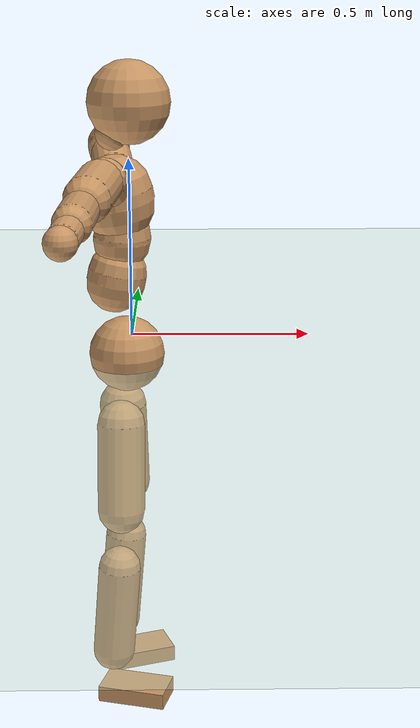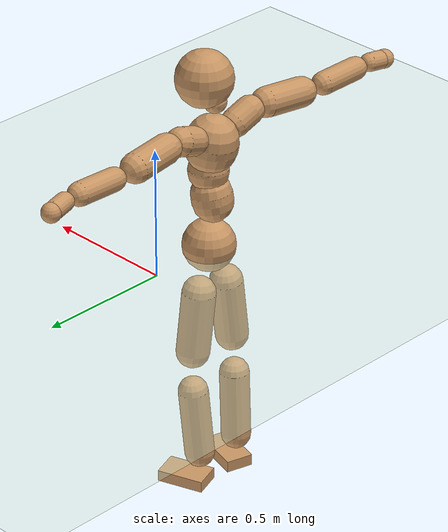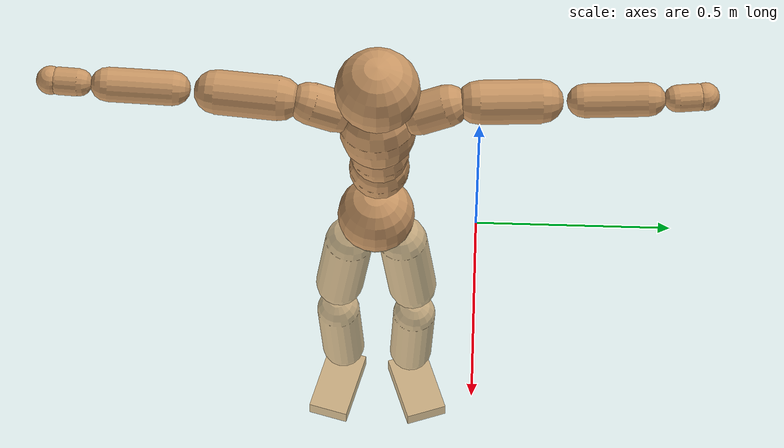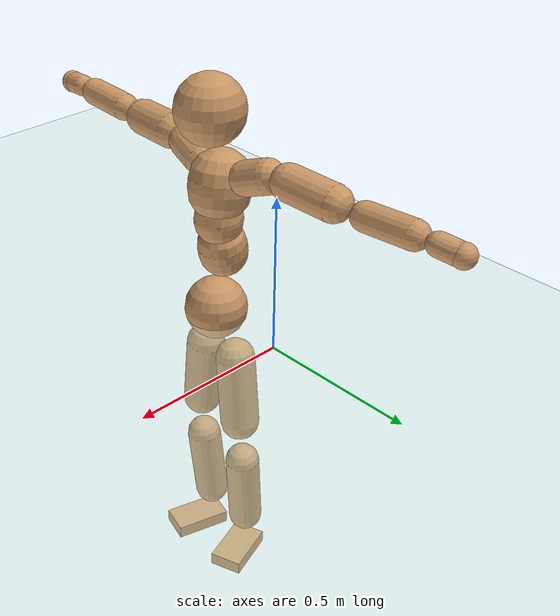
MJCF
<mujoco model="humanoid">
  <compiler coordinate="local"/>
  <default>
    <joint damping="0.0" armature="0.01" stiffness="0.0" limited="true"/>
    <geom conaffinity="1" condim="3" contype="7" margin="0.001" rgba="0.8 0.6 .4 1"/>
  </default>
  <asset>
    <texture type="skybox" builtin="gradient" rgb1=".4 .5 .6" rgb2="0 0 0" width="100" height="100"/>
    <texture builtin="flat" height="1278" mark="cross" markrgb="1 1 1" name="texgeom" random="0.01" rgb1="0.8 0.6 0.4" rgb2="0.8 0.6 0.4" type="cube" width="127"/>
    <texture builtin="checker" height="100" name="texplane" rgb1="0 0 0" rgb2="0.8 0.8 0.8" type="2d" width="100"/>
    <material name="MatPlane" reflectance="0.5" shininess="1" specular="1" texrepeat="60 60" texture="texplane"/>
    <material name="geom" texture="texgeom" texuniform="true"/>
  </asset>
  <worldbody>
    <light cutoff="100" diffuse="1 1 1" dir="-0 0 -1.3" directional="true" exponent="1" pos="0 0 1.3" specular=".1 .1 .1"/>
    <geom conaffinity="1" condim="3" name="floor" pos="0 0 0" rgba="0.8 0.9 0.8 1" size="100 100 .2" type="plane" material="MatPlane"/>
    <body name="Pelvis" pos="-0.0024 -0.2579 0.0262">
      <freejoint name="Pelvis"/>
      <geom type="sphere" contype="1" conaffinity="1" density="500" size="0.0999" pos="0.0000 0.0000 0.0000" name="Pelvis"/>
      <body name="L_Hip" pos="-0.0191 0.06 -0.0862">
        <joint name="L_Hip_x" type="hinge" pos="0 0 0" axis="1 0 0" stiffness="800" damping="80" armature="0.02" range="-180.0000 180.0000"/>
        <joint name="L_Hip_y" type="hinge" pos="0 0 0" axis="0 1 0" stiffness="800" damping="80" armature="0.02" range="-180.0000 180.0000"/>
        <joint name="L_Hip_z" type="hinge" pos="0 0 0" axis="0 0 1" stiffness="800" damping="80" armature="0.02" range="-180.0000 180.0000"/>
        <geom type="capsule" contype="1" conaffinity="1" density="500" fromto="0.0017 0.0090 -0.0798 0.0068 0.0359 -0.3190" size="0.0635" name="L_Hip"/>
        <body name="L_Knee" pos="0.0086 0.0448 -0.3988">
          <joint name="L_Knee_x" type="hinge" pos="0 0 0" axis="1 0 0" stiffness="800" damping="80" armature="0.02" range="-180.0000 180.0000"/>
          <joint name="L_Knee_y" type="hinge" pos="0 0 0" axis="0 1 0" stiffness="800" damping="80" armature="0.02" range="-180.0000 180.0000"/>
          <joint name="L_Knee_z" type="hinge" pos="0 0 0" axis="0 0 1" stiffness="800" damping="80" armature="0.02" range="-180.0000 180.0000"/>
          <geom type="capsule" contype="1" conaffinity="1" density="500" fromto="-0.0078 -0.0030 -0.0879 -0.0311 -0.0121 -0.3515" size="0.0567" name="L_Knee"/>
          <body name="L_Ankle" pos="-0.0389 -0.0151 -0.4394">
            <joint name="L_Ankle_x" type="hinge" pos="0 0 0" axis="1 0 0" stiffness="800" damping="80" armature="0.02" range="-180.0000 180.0000"/>
            <joint name="L_Ankle_y" type="hinge" pos="0 0 0" axis="0 1 0" stiffness="800" damping="80" armature="0.02" range="-180.0000 180.0000"/>
            <joint name="L_Ankle_z" type="hinge" pos="0 0 0" axis="0 0 1" stiffness="800" damping="80" armature="0.02" range="-180.0000 180.0000"/>
            <geom type="box" contype="1" conaffinity="1" density="500" pos="0.0625 0.0217 -0.0313" size="0.0905 0.054 0.0222" quat="0.9860 0.0000 0.0000 0.1665" name="L_Ankle"/>
            <body name="L_Toe" pos="0.1251 0.0435 -0.0626">
              <joint name="L_Toe_x" type="hinge" pos="0 0 0" axis="1 0 0" stiffness="500" damping="50" armature="0.02" range="-180.0000 180.0000"/>
              <joint name="L_Toe_y" type="hinge" pos="0 0 0" axis="0 1 0" stiffness="500" damping="50" armature="0.02" range="-180.0000 180.0000"/>
              <joint name="L_Toe_z" type="hinge" pos="0 0 0" axis="0 0 1" stiffness="500" damping="50" armature="0.02" range="-180.0000 180.0000"/>
              <geom type="box" contype="1" conaffinity="1" density="500" pos="0.0000 0.0000 0.0313" size="0.0011 0.0026 0.0011" quat="0.9853 0.0000 0.0000 0.1710" name="L_Toe"/>
            </body>
          </body>
        </body>
      </body>
      <body name="R_Hip" pos="-0.0152 -0.0616 -0.0945">
        <joint name="R_Hip_x" type="hinge" pos="0 0 0" axis="1 0 0" stiffness="800" damping="80" armature="0.02" range="-180.0000 180.0000"/>
        <joint name="R_Hip_y" type="hinge" pos="0 0 0" axis="0 1 0" stiffness="800" damping="80" armature="0.02" range="-180.0000 180.0000"/>
        <joint name="R_Hip_z" type="hinge" pos="0 0 0" axis="0 0 1" stiffness="800" damping="80" armature="0.02" range="-180.0000 180.0000"/>
        <geom type="capsule" contype="1" conaffinity="1" density="500" fromto="-0.0009 -0.0091 -0.0793 -0.0038 -0.0363 -0.3171" size="0.063" name="R_Hip"/>
        <body name="R_Knee" pos="-0.0047 -0.0454 -0.3964">
          <joint name="R_Knee_x" type="hinge" pos="0 0 0" axis="1 0 0" stiffness="800" damping="80" armature="0.02" range="-180.0000 180.0000"/>
          <joint name="R_Knee_y" type="hinge" pos="0 0 0" axis="0 1 0" stiffness="800" damping="80" armature="0.02" range="-180.0000 180.0000"/>
          <joint name="R_Knee_z" type="hinge" pos="0 0 0" axis="0 0 1" stiffness="800" damping="80" armature="0.02" range="-180.0000 180.0000"/>
          <geom type="capsule" contype="1" conaffinity="1" density="500" fromto="-0.0072 0.0039 -0.0866 -0.0289 0.0157 -0.3466" size="0.0568" name="R_Knee"/>
          <body name="R_Ankle" pos="-0.0361 0.0197 -0.4332">
            <joint name="R_Ankle_x" type="hinge" pos="0 0 0" axis="1 0 0" stiffness="800" damping="80" armature="0.02" range="-180.0000 180.0000"/>
            <joint name="R_Ankle_y" type="hinge" pos="0 0 0" axis="0 1 0" stiffness="800" damping="80" armature="0.02" range="-180.0000 180.0000"/>
            <joint name="R_Ankle_z" type="hinge" pos="0 0 0" axis="0 0 1" stiffness="800" damping="80" armature="0.02" range="-180.0000 180.0000"/>
            <geom type="box" contype="1" conaffinity="1" density="500" pos="0.0670 -0.0183 -0.0320" size="0.0933 0.0526 0.0225" quat="0.9912 0.0000 0.0000 -0.1326" name="R_Ankle"/>
            <body name="R_Toe" pos="0.1341 -0.0365 -0.064">
              <joint name="R_Toe_x" type="hinge" pos="0 0 0" axis="1 0 0" stiffness="500" damping="50" armature="0.02" range="-180.0000 180.0000"/>
              <joint name="R_Toe_y" type="hinge" pos="0 0 0" axis="0 1 0" stiffness="500" damping="50" armature="0.02" range="-180.0000 180.0000"/>
              <joint name="R_Toe_z" type="hinge" pos="0 0 0" axis="0 0 1" stiffness="500" damping="50" armature="0.02" range="-180.0000 180.0000"/>
              <geom type="box" contype="1" conaffinity="1" density="500" pos="0.0000 0.0000 0.0325" size="0.0011 0.0026 0.0012" quat="0.9923 0.0000 0.0000 -0.1240" name="R_Toe"/>
            </body>
          </body>
        </body>
      </body>
      <body name="Torso" pos="-0.0383 0.0045 0.1306">
        <joint name="Torso_x" type="hinge" pos="0 0 0" axis="1 0 0" stiffness="1000" damping="100" armature="0.02" range="-180.0000 180.0000"/>
        <joint name="Torso_y" type="hinge" pos="0 0 0" axis="0 1 0" stiffness="1000" damping="100" armature="0.02" range="-180.0000 180.0000"/>
        <joint name="Torso_z" type="hinge" pos="0 0 0" axis="0 0 1" stiffness="1000" damping="100" armature="0.02" range="-180.0000 180.0000"/>
        <geom type="capsule" contype="1" conaffinity="1" density="500" fromto="0.0180 0.0031 0.0894 0.0120 0.0021 0.0596" size="0.076632" name="Torso"/>
        <body name="Spine" pos="0.0301 0.0052 0.1489">
          <joint name="Spine_x" type="hinge" pos="0 0 0" axis="1 0 0" stiffness="1000" damping="100" armature="0.02" range="-180.0000 180.0000"/>
          <joint name="Spine_y" type="hinge" pos="0 0 0" axis="0 1 0" stiffness="1000" damping="100" armature="0.02" range="-180.0000 180.0000"/>
          <joint name="Spine_z" type="hinge" pos="0 0 0" axis="0 0 1" stiffness="1000" damping="100" armature="0.02" range="-180.0000 180.0000"/>
          <geom type="capsule" contype="1" conaffinity="1" density="500" fromto="0.0018 -0.0015 0.0364 0.0012 -0.0010 0.0243" size="0.07533" name="Spine"/>
          <body name="Chest" pos="0.0029 -0.0025 0.0607">
            <joint name="Chest_x" type="hinge" pos="0 0 0" axis="1 0 0" stiffness="1000" damping="100" armature="0.02" range="-180.0000 180.0000"/>
            <joint name="Chest_y" type="hinge" pos="0 0 0" axis="0 1 0" stiffness="1000" damping="100" armature="0.02" range="-180.0000 180.0000"/>
            <joint name="Chest_z" type="hinge" pos="0 0 0" axis="0 0 1" stiffness="1000" damping="100" armature="0.02" range="-180.0000 180.0000"/>
            <geom type="capsule" contype="1" conaffinity="1" density="500" fromto="-0.0157 -0.0050 0.0915 -0.0105 -0.0033 0.0610" size="0.096441" name="Chest"/>
            <body name="Neck" pos="-0.0331 -0.0133 0.2224">
              <joint name="Neck_x" type="hinge" pos="0 0 0" axis="1 0 0" stiffness="500" damping="50" armature="0.02" range="-180.0000 180.0000"/>
              <joint name="Neck_y" type="hinge" pos="0 0 0" axis="0 1 0" stiffness="500" damping="50" armature="0.02" range="-180.0000 180.0000"/>
              <joint name="Neck_z" type="hinge" pos="0 0 0" axis="0 0 1" stiffness="500" damping="50" armature="0.02" range="-180.0000 180.0000"/>
              <geom type="capsule" contype="1" conaffinity="1" density="500" fromto="0.0110 0.0020 0.0191 0.0440 0.0080 0.0766" size="0.042966" name="Neck"/>
              <body name="Head" pos="0.055 0.01 0.0957">
                <joint name="Head_x" type="hinge" pos="0 0 0" axis="1 0 0" stiffness="500" damping="50" armature="0.02" range="-180.0000 180.0000"/>
                <joint name="Head_y" type="hinge" pos="0 0 0" axis="0 1 0" stiffness="500" damping="50" armature="0.02" range="-180.0000 180.0000"/>
                <joint name="Head_z" type="hinge" pos="0 0 0" axis="0 0 1" stiffness="500" damping="50" armature="0.02" range="-180.0000 180.0000"/>
                <geom type="sphere" contype="1" conaffinity="1" density="500" size="0.1068" pos="0.0000 0.0000 0.0000" name="Head"/>
              </body>
            </body>
            <body name="L_Thorax" pos="-0.0203 0.072 0.1184">
              <joint name="L_Thorax_x" type="hinge" pos="0 0 0" axis="1 0 0" stiffness="500" damping="50" armature="0.02" range="-180.0000 180.0000"/>
              <joint name="L_Thorax_y" type="hinge" pos="0 0 0" axis="0 1 0" stiffness="500" damping="50" armature="0.02" range="-180.0000 180.0000"/>
              <joint name="L_Thorax_z" type="hinge" pos="0 0 0" axis="0 0 1" stiffness="500" damping="50" armature="0.02" range="-180.0000 180.0000"/>
              <geom type="capsule" contype="1" conaffinity="1" density="500" fromto="-0.0038 0.0244 0.0092 -0.0151 0.0977 0.0367" size="0.0537" name="L_Thorax"/>
              <body name="L_Shoulder" pos="-0.0189 0.1221 0.0458">
                <joint name="L_Shoulder_x" type="hinge" pos="0 0 0" axis="1 0 0" stiffness="500" damping="50" armature="0.02" range="-720.0000 720.0000"/>
                <joint name="L_Shoulder_y" type="hinge" pos="0 0 0" axis="0 1 0" stiffness="500" damping="50" armature="0.02" range="-720.0000 720.0000"/>
                <joint name="L_Shoulder_z" type="hinge" pos="0 0 0" axis="0 0 1" stiffness="500" damping="50" armature="0.02" range="-720.0000 720.0000"/>
                <geom type="capsule" contype="1" conaffinity="1" density="500" fromto="-0.0045 0.0523 -0.0033 -0.0181 0.2092 -0.0133" size="0.0559" name="L_Shoulder"/>
                <body name="L_Elbow" pos="-0.0226 0.2615 -0.0166">
                  <joint name="L_Elbow_x" type="hinge" pos="0 0 0" axis="1 0 0" stiffness="500" damping="50" armature="0.02" range="-720.0000 720.0000"/>
                  <joint name="L_Elbow_y" type="hinge" pos="0 0 0" axis="0 1 0" stiffness="500" damping="50" armature="0.02" range="-720.0000 720.0000"/>
                  <joint name="L_Elbow_z" type="hinge" pos="0 0 0" axis="0 0 1" stiffness="500" damping="50" armature="0.02" range="-720.0000 720.0000"/>
                  <geom type="capsule" contype="1" conaffinity="1" density="500" fromto="-0.0015 0.0538 0.0026 -0.0061 0.2153 0.0104" size="0.0432" name="L_Elbow"/>
                  <body name="L_Wrist" pos="-0.0076 0.2691 0.013">
                    <joint name="L_Wrist_x" type="hinge" pos="0 0 0" axis="1 0 0" stiffness="300" damping="30" armature="0.02" range="-180.0000 180.0000"/>
                    <joint name="L_Wrist_y" type="hinge" pos="0 0 0" axis="0 1 0" stiffness="300" damping="30" armature="0.02" range="-180.0000 180.0000"/>
                    <joint name="L_Wrist_z" type="hinge" pos="0 0 0" axis="0 0 1" stiffness="300" damping="30" armature="0.02" range="-180.0000 180.0000"/>
                    <geom type="capsule" contype="1" conaffinity="1" density="500" fromto="-0.0031 0.0175 -0.0022 -0.0126 0.0700 -0.0086" size="0.0346" name="L_Wrist"/>
                    <body name="L_Hand" pos="-0.0157 0.0875 -0.0108">
                      <joint name="L_Hand_x" type="hinge" pos="0 0 0" axis="1 0 0" stiffness="300" damping="30" armature="0.02" range="-180.0000 180.0000"/>
                      <joint name="L_Hand_y" type="hinge" pos="0 0 0" axis="0 1 0" stiffness="300" damping="30" armature="0.02" range="-180.0000 180.0000"/>
                      <joint name="L_Hand_z" type="hinge" pos="0 0 0" axis="0 0 1" stiffness="300" damping="30" armature="0.02" range="-180.0000 180.0000"/>
                      <geom type="sphere" contype="1" conaffinity="1" density="500" size="0.0360" pos="0.0000 0.0000 0.0000" name="L_Hand"/>
                    </body>
                  </body>
                </body>
              </body>
            </body>
            <body name="R_Thorax" pos="-0.0251 -0.0834 0.1166">
              <joint name="R_Thorax_x" type="hinge" pos="0 0 0" axis="1 0 0" stiffness="500" damping="50" armature="0.02" range="-180.0000 180.0000"/>
              <joint name="R_Thorax_y" type="hinge" pos="0 0 0" axis="0 1 0" stiffness="500" damping="50" armature="0.02" range="-180.0000 180.0000"/>
              <joint name="R_Thorax_z" type="hinge" pos="0 0 0" axis="0 0 1" stiffness="500" damping="50" armature="0.02" range="-180.0000 180.0000"/>
              <geom type="capsule" contype="1" conaffinity="1" density="500" fromto="-0.0016 -0.0226 0.0094 -0.0064 -0.0906 0.0377" size="0.0539" name="R_Thorax"/>
              <body name="R_Shoulder" pos="-0.008 -0.1132 0.0471">
                <joint name="R_Shoulder_x" type="hinge" pos="0 0 0" axis="1 0 0" stiffness="500" damping="50" armature="0.02" range="-720.0000 720.0000"/>
                <joint name="R_Shoulder_y" type="hinge" pos="0 0 0" axis="0 1 0" stiffness="500" damping="50" armature="0.02" range="-720.0000 720.0000"/>
                <joint name="R_Shoulder_z" type="hinge" pos="0 0 0" axis="0 0 1" stiffness="500" damping="50" armature="0.02" range="-720.0000 720.0000"/>
                <geom type="capsule" contype="1" conaffinity="1" density="500" fromto="-0.0063 -0.0530 -0.0031 -0.0252 -0.2121 -0.0125" size="0.0566" name="R_Shoulder"/>
                <body name="R_Elbow" pos="-0.0316 -0.2651 -0.0156">
                  <joint name="R_Elbow_x" type="hinge" pos="0 0 0" axis="1 0 0" stiffness="500" damping="50" armature="0.02" range="-720.0000 720.0000"/>
                  <joint name="R_Elbow_y" type="hinge" pos="0 0 0" axis="0 1 0" stiffness="500" damping="50" armature="0.02" range="-720.0000 720.0000"/>
                  <joint name="R_Elbow_z" type="hinge" pos="0 0 0" axis="0 0 1" stiffness="500" damping="50" armature="0.02" range="-720.0000 720.0000"/>
                  <geom type="capsule" contype="1" conaffinity="1" density="500" fromto="-0.0013 -0.0547 0.0015 -0.0053 -0.2188 0.0060" size="0.0439" name="R_Elbow"/>
                  <body name="R_Wrist" pos="-0.0067 -0.2735 0.0075">
                    <joint name="R_Wrist_x" type="hinge" pos="0 0 0" axis="1 0 0" stiffness="300" damping="30" armature="0.02" range="-180.0000 180.0000"/>
                    <joint name="R_Wrist_y" type="hinge" pos="0 0 0" axis="0 1 0" stiffness="300" damping="30" armature="0.02" range="-180.0000 180.0000"/>
                    <joint name="R_Wrist_z" type="hinge" pos="0 0 0" axis="0 0 1" stiffness="300" damping="30" armature="0.02" range="-180.0000 180.0000"/>
                    <geom type="capsule" contype="1" conaffinity="1" density="500" fromto="-0.0020 -0.0179 -0.0017 -0.0081 -0.0717 -0.0069" size="0.0352" name="R_Wrist"/>
                    <body name="R_Hand" pos="-0.0102 -0.0896 -0.0087">
                      <joint name="R_Hand_x" type="hinge" pos="0 0 0" axis="1 0 0" stiffness="300" damping="30" armature="0.02" range="-180.0000 180.0000"/>
                      <joint name="R_Hand_y" type="hinge" pos="0 0 0" axis="0 1 0" stiffness="300" damping="30" armature="0.02" range="-180.0000 180.0000"/>
                      <joint name="R_Hand_z" type="hinge" pos="0 0 0" axis="0 0 1" stiffness="300" damping="30" armature="0.02" range="-180.0000 180.0000"/>
                      <geom type="sphere" contype="1" conaffinity="1" density="500" size="0.0365" pos="0.0000 0.0000 0.0000" name="R_Hand"/>
                    </body>
                  </body>
                </body>
              </body>
            </body>
          </body>
        </body>
      </body>
    </body>
  </worldbody>
  <actuator>
    <motor name="L_Hip_x" joint="L_Hip_x" gear="500"/>
    <motor name="L_Hip_y" joint="L_Hip_y" gear="500"/>
    <motor name="L_Hip_z" joint="L_Hip_z" gear="500"/>
    <motor name="L_Knee_x" joint="L_Knee_x" gear="500"/>
    <motor name="L_Knee_y" joint="L_Knee_y" gear="500"/>
    <motor name="L_Knee_z" joint="L_Knee_z" gear="500"/>
    <motor name="L_Ankle_x" joint="L_Ankle_x" gear="500"/>
    <motor name="L_Ankle_y" joint="L_Ankle_y" gear="500"/>
    <motor name="L_Ankle_z" joint="L_Ankle_z" gear="500"/>
    <motor name="L_Toe_x" joint="L_Toe_x" gear="500"/>
    <motor name="L_Toe_y" joint="L_Toe_y" gear="500"/>
    <motor name="L_Toe_z" joint="L_Toe_z" gear="500"/>
    <motor name="R_Hip_x" joint="R_Hip_x" gear="500"/>
    <motor name="R_Hip_y" joint="R_Hip_y" gear="500"/>
    <motor name="R_Hip_z" joint="R_Hip_z" gear="500"/>
    <motor name="R_Knee_x" joint="R_Knee_x" gear="500"/>
    <motor name="R_Knee_y" joint="R_Knee_y" gear="500"/>
    <motor name="R_Knee_z" joint="R_Knee_z" gear="500"/>
    <motor name="R_Ankle_x" joint="R_Ankle_x" gear="500"/>
    <motor name="R_Ankle_y" joint="R_Ankle_y" gear="500"/>
    <motor name="R_Ankle_z" joint="R_Ankle_z" gear="500"/>
    <motor name="R_Toe_x" joint="R_Toe_x" gear="500"/>
    <motor name="R_Toe_y" joint="R_Toe_y" gear="500"/>
    <motor name="R_Toe_z" joint="R_Toe_z" gear="500"/>
    <motor name="Torso_x" joint="Torso_x" gear="500"/>
    <motor name="Torso_y" joint="Torso_y" gear="500"/>
    <motor name="Torso_z" joint="Torso_z" gear="500"/>
    <motor name="Spine_x" joint="Spine_x" gear="500"/>
    <motor name="Spine_y" joint="Spine_y" gear="500"/>
    <motor name="Spine_z" joint="Spine_z" gear="500"/>
    <motor name="Chest_x" joint="Chest_x" gear="500"/>
    <motor name="Chest_y" joint="Chest_y" gear="500"/>
    <motor name="Chest_z" joint="Chest_z" gear="500"/>
    <motor name="Neck_x" joint="Neck_x" gear="500"/>
    <motor name="Neck_y" joint="Neck_y" gear="500"/>
    <motor name="Neck_z" joint="Neck_z" gear="500"/>
    <motor name="Head_x" joint="Head_x" gear="500"/>
    <motor name="Head_y" joint="Head_y" gear="500"/>
    <motor name="Head_z" joint="Head_z" gear="500"/>
    <motor name="L_Thorax_x" joint="L_Thorax_x" gear="500"/>
    <motor name="L_Thorax_y" joint="L_Thorax_y" gear="500"/>
    <motor name="L_Thorax_z" joint="L_Thorax_z" gear="500"/>
    <motor name="L_Shoulder_x" joint="L_Shoulder_x" gear="500"/>
    <motor name="L_Shoulder_y" joint="L_Shoulder_y" gear="500"/>
    <motor name="L_Shoulder_z" joint="L_Shoulder_z" gear="500"/>
    <motor name="L_Elbow_x" joint="L_Elbow_x" gear="500"/>
    <motor name="L_Elbow_y" joint="L_Elbow_y" gear="500"/>
    <motor name="L_Elbow_z" joint="L_Elbow_z" gear="500"/>
    <motor name="L_Wrist_x" joint="L_Wrist_x" gear="500"/>
    <motor name="L_Wrist_y" joint="L_Wrist_y" gear="500"/>
    <motor name="L_Wrist_z" joint="L_Wrist_z" gear="500"/>
    <motor name="L_Hand_x" joint="L_Hand_x" gear="500"/>
    <motor name="L_Hand_y" joint="L_Hand_y" gear="500"/>
    <motor name="L_Hand_z" joint="L_Hand_z" gear="500"/>
    <motor name="R_Thorax_x" joint="R_Thorax_x" gear="500"/>
    <motor name="R_Thorax_y" joint="R_Thorax_y" gear="500"/>
    <motor name="R_Thorax_z" joint="R_Thorax_z" gear="500"/>
    <motor name="R_Shoulder_x" joint="R_Shoulder_x" gear="500"/>
    <motor name="R_Shoulder_y" joint="R_Shoulder_y" gear="500"/>
    <motor name="R_Shoulder_z" joint="R_Shoulder_z" gear="500"/>
    <motor name="R_Elbow_x" joint="R_Elbow_x" gear="500"/>
    <motor name="R_Elbow_y" joint="R_Elbow_y" gear="500"/>
    <motor name="R_Elbow_z" joint="R_Elbow_z" gear="500"/>
    <motor name="R_Wrist_x" joint="R_Wrist_x" gear="500"/>
    <motor name="R_Wrist_y" joint="R_Wrist_y" gear="500"/>
    <motor name="R_Wrist_z" joint="R_Wrist_z" gear="500"/>
    <motor name="R_Hand_x" joint="R_Hand_x" gear="500"/>
    <motor name="R_Hand_y" joint="R_Hand_y" gear="500"/>
    <motor name="R_Hand_z" joint="R_Hand_z" gear="500"/>
  </actuator>
  <contact>
    <exclude body1="Torso" body2="Chest"/>
    <exclude body1="Head" body2="Chest"/>
    <exclude body1="R_Knee" body2="R_Toe"/>
    <exclude body1="R_Knee" body2="L_Ankle"/>
    <exclude body1="R_Knee" body2="L_Toe"/>
    <exclude body1="L_Knee" body2="L_Toe"/>
    <exclude body1="L_Knee" body2="R_Ankle"/>
    <exclude body1="L_Knee" body2="R_Toe"/>
    <exclude body1="L_Shoulder" body2="Chest"/>
    <exclude body1="R_Shoulder" body2="Chest"/>
  </contact>
  <sensor/>
  <size njmax="700" nconmax="700"/>
</mujoco>
